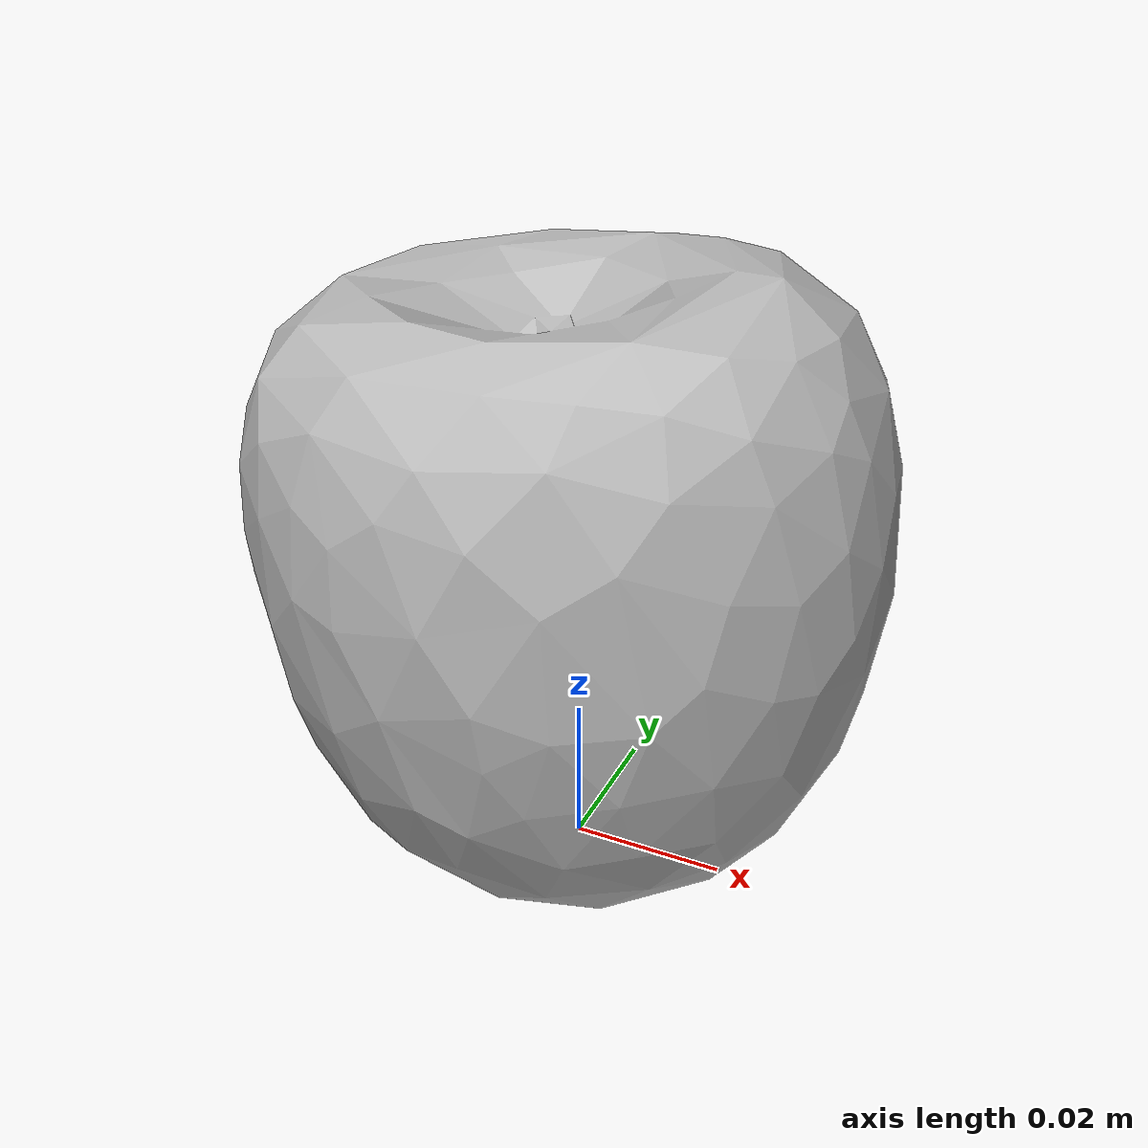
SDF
<?xml version="1.0"?>
<sdf version="1.6">
    <model name="apple">
        <pose>0 0 0.01 0 0 0</pose>
        <link name="link">
            <pose>0.0 0 0 0 0 0</pose>
            <visual name="visual_00">
                <geometry>
                    <mesh>
                        <uri>model://apple/textured.dae</uri>
                    </mesh>
                </geometry>
            </visual>
            <collision name="collision">
                <geometry>
                    <mesh>
                        <uri>model://apple/collision.dae</uri>
                    </mesh>
                </geometry>
                <surface>
                    <friction>
                        <ode>
                            <mu>100</mu>
                            <mu2>50</mu2>
                            <fdir1>0.0 0.0 0.0</fdir1>
                            <slip1>0.0</slip1>
                            <slip2>0.0</slip2>
                        </ode>
                    </friction>
                    <contact>
                        <ode>
                            <max_vel>0.1</max_vel>
                            <min_depth>0.001</min_depth>
                        </ode>
                    </contact>
                </surface>
                <max_contacts>3</max_contacts>
            </collision>
            <inertial>
                <pose> 0.001 -0.004 0.036 0 0 0</pose>
                <inertia>
                    <ixx>0.9999999999999998e-04</ixx>
                    <ixy>-0.0</ixy>
                    <ixz>-0.0</ixz>
                    <iyy>0.9999999999999998e-04</iyy>
                    <iyz>0.0</iyz>
                    <izz>0.9999999999999998e-04</izz>
                </inertia>
            </inertial>
        </link>
    </model>
</sdf>
